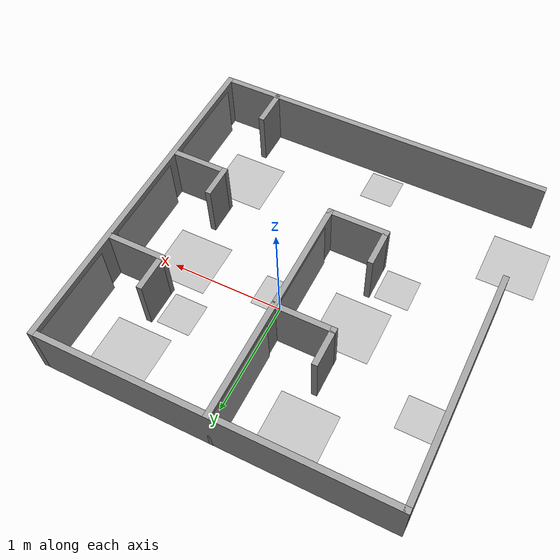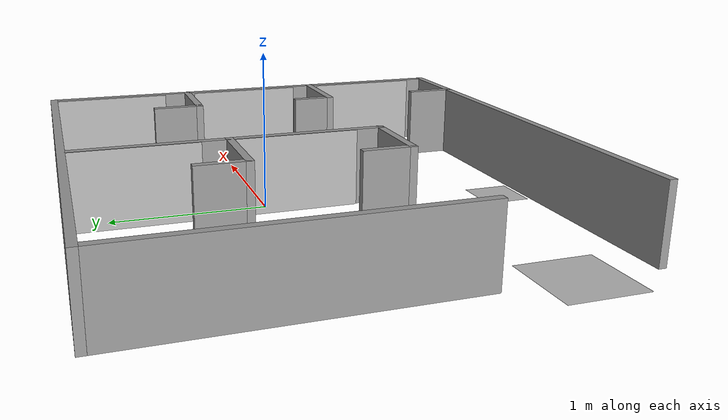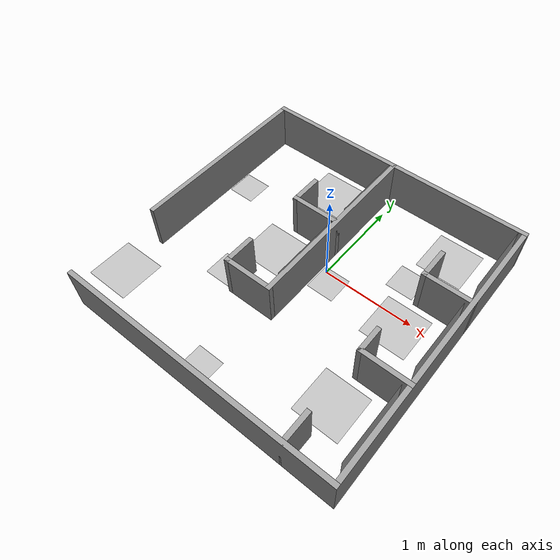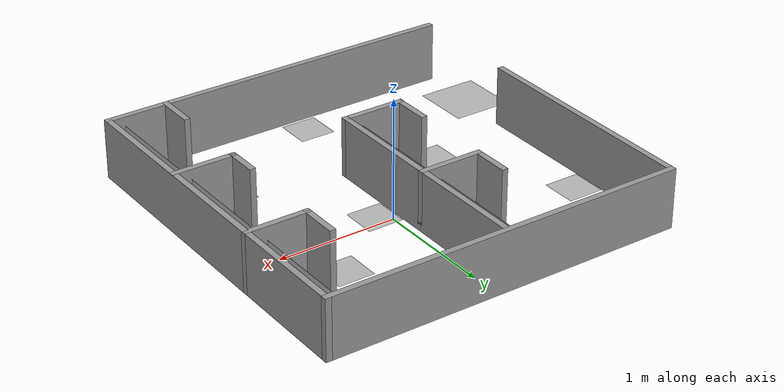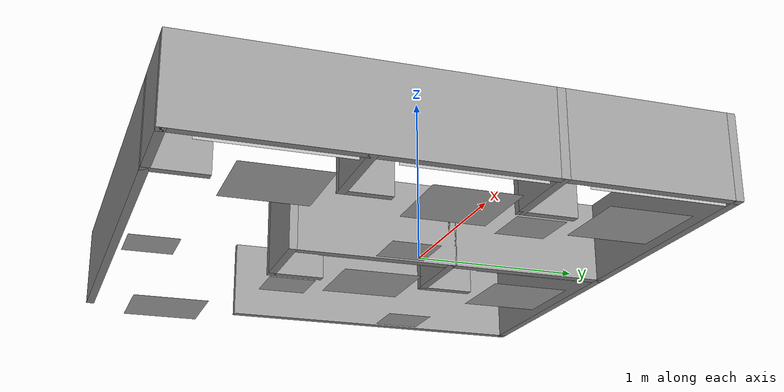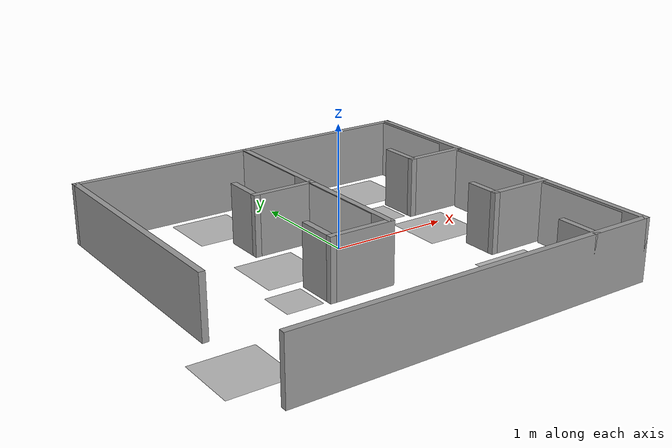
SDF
<?xml version='1.0'?>
<sdf version='1.7'>
  <model name='reinovo_raicom_map'>
    <model name='rei_begin'>
      <link name='link_0'>
        <visual name='visual'>
          <geometry>
            <mesh>
              <uri>model://reinovo_raicom_map/rei_begin/meshes/begin.dae</uri>
            </mesh>
          </geometry>
        </visual>
      </link>
      <pose>-1.6 -1.25 0.01 0 0 0</pose>
    </model>
    <model name='rei_beijing'>
      <link name='link_0'>
        <visual name='visual'>
          <geometry>
            <mesh>
              <uri>model://reinovo_raicom_map/rei_beijing/meshes/beijing.dae</uri>
            </mesh>
          </geometry>
        </visual>
      </link>
      <pose>1.35 -1.2 0.25 1.5707 0.0 -1.5707</pose>
    </model>
    <model name='rei_goal'>
      <link name='link_0'>
        <visual name='visual'>
          <geometry>
            <mesh>
              <uri>model://reinovo_raicom_map/rei_goal/meshes/goal.dae</uri>
            </mesh>
          </geometry>
        </visual>
      </link>
      <pose>-0.6 0.9 0.005 0 -0 0</pose>
    </model>
    <model name='rei_goal_0'>
      <link name='link_0'>
        <visual name='visual'>
          <geometry>
            <mesh>
              <uri>model://reinovo_raicom_map/rei_goal/meshes/goal.dae</uri>
            </mesh>
          </geometry>
        </visual>
      </link>
      <pose>-0.6 -0.1 0.005 0 -0 0</pose>
    </model>
    <model name='rei_goal_1'>
      <link name='link_0'>
        <visual name='visual'>
          <geometry>
            <mesh>
              <uri>model://reinovo_raicom_map/rei_goal/meshes/goal.dae</uri>
            </mesh>
          </geometry>
        </visual>
      </link>
      <pose>0.9 -1.1 0.005 0 -0 0</pose>
    </model>
    <model name='rei_goal_2'>
      <link name='link_0'>
        <visual name='visual'>
          <geometry>
            <mesh>
              <uri>model://reinovo_raicom_map/rei_goal/meshes/goal.dae</uri>
            </mesh>
          </geometry>
        </visual>
      </link>
      <pose>0.9 -0.1 0.005 0 -0 0</pose>
    </model>
    <model name='rei_goal_3'>
      <link name='link_0'>
        <visual name='visual'>
          <geometry>
            <mesh>
              <uri>model://reinovo_raicom_map/rei_goal/meshes/goal.dae</uri>
            </mesh>
          </geometry>
        </visual>
      </link>
      <pose>0.9 0.9 0.005 0 -0 0</pose>
    </model>
    <model name='rei_guangzhou'>
      <link name='link_0'>
        <visual name='visual'>
          <geometry>
            <mesh>
              <uri>model://reinovo_raicom_map/rei_guangzhou/meshes/guangzhou.dae</uri>
            </mesh>
          </geometry>
        </visual>
      </link>
      <pose>1.35 -0.2 0.25 1.5707 0.0 -1.5707</pose>
    </model>
    <model name='rei_jiling'>
      <link name='link_0'>
        <visual name='visual'>
          <geometry>
            <mesh>
              <uri>model://reinovo_raicom_map/rei_jiling/meshes/jiling.dae</uri>
            </mesh>
          </geometry>
        </visual>
      </link>
      <pose>1.35 0.825 0.25 1.5707 0.0 -1.5707</pose>
    </model>
    <model name='rei_obs'>
      <link name='link_0'>
        <visual name='visual'>
          <geometry>
            <mesh>
              <uri>model://reinovo_raicom_map/rei_obs/meshes/obs.dae</uri>
            </mesh>
          </geometry>
        </visual>
      </link>
      <pose>-0.8 -0.6 0.005 0 -0 0</pose>
    </model>
    <model name='rei_obs_0'>
      <link name='link_0'>
        <visual name='visual'>
          <geometry>
            <mesh>
              <uri>model://reinovo_raicom_map/rei_obs/meshes/obs.dae</uri>
            </mesh>
          </geometry>
        </visual>
      </link>
      <pose>-1.4 0.4 0.005 0 -0 0</pose>
    </model>
    <model name='rei_obs_1'>
      <link name='link_0'>
        <visual name='visual'>
          <geometry>
            <mesh>
              <uri>model://reinovo_raicom_map/rei_obs/meshes/obs.dae</uri>
            </mesh>
          </geometry>
        </visual>
      </link>
      <pose>-0.25 -1.55 0.005 0 -0 0</pose>
    </model>
    <model name='rei_obs_2'>
      <link name='link_0'>
        <visual name='visual'>
          <geometry>
            <mesh>
              <uri>model://reinovo_raicom_map/rei_obs/meshes/obs.dae</uri>
            </mesh>
          </geometry>
        </visual>
      </link>
      <pose>0.7 0.4 0.005 0 -0 0</pose>
    </model>
    <model name='rei_obs_3'>
      <link name='link_0'>
        <visual name='visual'>
          <geometry>
            <mesh>
              <uri>model://reinovo_raicom_map/rei_obs/meshes/obs.dae</uri>
            </mesh>
          </geometry>
        </visual>
      </link>
      <pose>0.1 -0.1 0.005 0 -0 0</pose>
    </model>
    <model name='rei_shanghai'>
      <link name='link_0'>
        <visual name='visual'>
          <geometry>
            <mesh>
              <uri>model://reinovo_raicom_map/rei_shanghai/meshes/shanghai.dae</uri>
            </mesh>
          </geometry>
        </visual>
      </link>
      <pose>-0.125 0.825 0.25 1.5707 0.0 -1.5707</pose>
    </model>
    <model name='rei_shenzhen'>
      <link name='link_0'>
        <visual name='visual'>
          <geometry>
            <mesh>
              <uri>model://reinovo_raicom_map/rei_shenzhen/meshes/shenzhen.dae</uri>
            </mesh>
          </geometry>
        </visual>
      </link>
      <pose>-0.125 -0.18 0.25 1.5707 0.0 -1.5707</pose>
    </model>
    <model name='reinovo_match'>
      <pose>-0.088531 -0.254283 0 0 -0 0</pose>
      <link name='Wall_0'>
        <collision name='Wall_0_Collision'>
          <geometry>
            <box>
              <size>3.05 0.05 0.5</size>
            </box>
          </geometry>
          <pose>0 0 0.25 0 -0 0</pose>
        </collision>
        <visual name='Wall_0_Visual'>
          <pose>0 0 0.25 0 -0 0</pose>
          <geometry>
            <box>
              <size>3.05 0.05 0.5</size>
            </box>
          </geometry>
          <material>
            <script>
              <uri>file://media/materials/scripts/gazebo.material</uri>
              <name>Gazebo/Grey</name>
            </script>
            <ambient>1 1 1 1</ambient>
          </material>
          <meta>
            <layer>0</layer>
          </meta>
        </visual>
        <pose>0 -1.5 0 0 -0 0</pose>
      </link>
      <link name='Wall_11'>
        <collision name='Wall_11_Collision'>
          <geometry>
            <box>
              <size>0.3 0.05 0.5</size>
            </box>
          </geometry>
          <pose>0 0 0.25 0 -0 0</pose>
        </collision>
        <visual name='Wall_11_Visual'>
          <pose>0 0 0.25 0 -0 0</pose>
          <geometry>
            <box>
              <size>0.3 0.05 0.5</size>
            </box>
          </geometry>
          <material>
            <script>
              <uri>file://media/materials/scripts/gazebo.material</uri>
              <name>Gazebo/Grey</name>
            </script>
            <ambient>1 1 1 1</ambient>
          </material>
          <meta>
            <layer>0</layer>
          </meta>
        </visual>
        <pose>1 -0.375 0 0 -0 1.5708</pose>
      </link>
      <link name='Wall_13'>
        <collision name='Wall_13_Collision'>
          <geometry>
            <box>
              <size>0.35 0.05 0.5</size>
            </box>
          </geometry>
          <pose>0 0 0.25 0 -0 0</pose>
        </collision>
        <visual name='Wall_13_Visual'>
          <pose>0 0 0.25 0 -0 0</pose>
          <geometry>
            <box>
              <size>0.35 0.05 0.5</size>
            </box>
          </geometry>
          <material>
            <script>
              <uri>file://media/materials/scripts/gazebo.material</uri>
              <name>Gazebo/Grey</name>
            </script>
            <ambient>1 1 1 1</ambient>
          </material>
          <meta>
            <layer>0</layer>
          </meta>
        </visual>
        <pose>1 0.65 0 0 -0 1.5708</pose>
      </link>
      <link name='Wall_16'>
        <collision name='Wall_16_Collision'>
          <geometry>
            <box>
              <size>0.55 0.05 0.5</size>
            </box>
          </geometry>
          <pose>0 0 0.25 0 -0 0</pose>
        </collision>
        <visual name='Wall_16_Visual'>
          <pose>0 0 0.25 0 -0 0</pose>
          <geometry>
            <box>
              <size>0.55 0.05 0.5</size>
            </box>
          </geometry>
          <material>
            <script>
              <uri>file://media/materials/scripts/gazebo.material</uri>
              <name>Gazebo/Grey</name>
            </script>
            <ambient>1 1 1 1</ambient>
          </material>
          <meta>
            <layer>0</layer>
          </meta>
        </visual>
        <pose>1.25 0.5 0 0 -0 3.14159</pose>
      </link>
      <link name='Wall_18'>
        <collision name='Wall_18_Collision'>
          <geometry>
            <box>
              <size>0.55 0.05 0.5</size>
            </box>
          </geometry>
          <pose>0 0 0.25 0 -0 0</pose>
        </collision>
        <visual name='Wall_18_Visual'>
          <pose>0 0 0.25 0 -0 0</pose>
          <geometry>
            <box>
              <size>0.55 0.05 0.5</size>
            </box>
          </geometry>
          <material>
            <script>
              <uri>file://media/materials/scripts/gazebo.material</uri>
              <name>Gazebo/Grey</name>
            </script>
            <ambient>1 1 1 1</ambient>
          </material>
          <meta>
            <layer>0</layer>
          </meta>
        </visual>
        <pose>1.25 -0.5 0 0 -0 3.14159</pose>
      </link>
      <link name='Wall_2'>
        <collision name='Wall_2_Collision'>
          <geometry>
            <box>
              <size>3.05 0.05 0.5</size>
            </box>
          </geometry>
          <pose>0 0 0.25 0 -0 0</pose>
        </collision>
        <visual name='Wall_2_Visual'>
          <pose>0 0 0.25 0 -0 0</pose>
          <geometry>
            <box>
              <size>3.05 0.05 0.5</size>
            </box>
          </geometry>
          <material>
            <script>
              <uri>file://media/materials/scripts/gazebo.material</uri>
              <name>Gazebo/Grey</name>
            </script>
            <ambient>1 1 1 1</ambient>
          </material>
          <meta>
            <layer>0</layer>
          </meta>
        </visual>
        <pose>1.5 0 0 0 -0 1.5708</pose>
      </link>
      <link name='Wall_20'>
        <collision name='Wall_20_Collision'>
          <geometry>
            <box>
              <size>0.55 0.05 0.5</size>
            </box>
          </geometry>
          <pose>0 0 0.25 0 -0 0</pose>
        </collision>
        <visual name='Wall_20_Visual'>
          <pose>0 0 0.25 0 -0 0</pose>
          <geometry>
            <box>
              <size>0.55 0.05 0.5</size>
            </box>
          </geometry>
          <material>
            <script>
              <uri>file://media/materials/scripts/gazebo.material</uri>
              <name>Gazebo/Grey</name>
            </script>
            <ambient>1 1 1 1</ambient>
          </material>
          <meta>
            <layer>0</layer>
          </meta>
        </visual>
        <pose>-0.25 0.5 0 0 -0 3.14159</pose>
      </link>
      <link name='Wall_22'>
        <collision name='Wall_22_Collision'>
          <geometry>
            <box>
              <size>0.55 0.05 0.5</size>
            </box>
          </geometry>
          <pose>0 0 0.25 0 -0 0</pose>
        </collision>
        <visual name='Wall_22_Visual'>
          <pose>0 0 0.25 0 -0 0</pose>
          <geometry>
            <box>
              <size>0.55 0.05 0.5</size>
            </box>
          </geometry>
          <material>
            <script>
              <uri>file://media/materials/scripts/gazebo.material</uri>
              <name>Gazebo/Grey</name>
            </script>
            <ambient>1 1 1 1</ambient>
          </material>
          <meta>
            <layer>0</layer>
          </meta>
        </visual>
        <pose>-0.25 -0.5 0 0 -0 3.14159</pose>
      </link>
      <link name='Wall_24'>
        <collision name='Wall_24_Collision'>
          <geometry>
            <box>
              <size>2.05 0.05 0.5</size>
            </box>
          </geometry>
          <pose>0 0 0.25 0 -0 0</pose>
        </collision>
        <visual name='Wall_24_Visual'>
          <pose>0 0 0.25 0 -0 0</pose>
          <geometry>
            <box>
              <size>2.05 0.05 0.5</size>
            </box>
          </geometry>
          <material>
            <script>
              <uri>file://media/materials/scripts/gazebo.material</uri>
              <name>Gazebo/Grey</name>
            </script>
            <ambient>1 1 1 1</ambient>
          </material>
          <meta>
            <layer>0</layer>
          </meta>
        </visual>
        <pose>0 0.5 0 0 -0 -1.5708</pose>
      </link>
      <link name='Wall_26'>
        <collision name='Wall_26_Collision'>
          <geometry>
            <box>
              <size>0.35 0.05 0.5</size>
            </box>
          </geometry>
          <pose>0 0 0.25 0 -0 0</pose>
        </collision>
        <visual name='Wall_26_Visual'>
          <pose>0 0 0.25 0 -0 0</pose>
          <geometry>
            <box>
              <size>0.35 0.05 0.5</size>
            </box>
          </geometry>
          <material>
            <script>
              <uri>file://media/materials/scripts/gazebo.material</uri>
              <name>Gazebo/Grey</name>
            </script>
            <ambient>1 1 1 1</ambient>
          </material>
          <meta>
            <layer>0</layer>
          </meta>
        </visual>
        <pose>-0.5 0.65 0 0 -0 1.5708</pose>
      </link>
      <link name='Wall_28'>
        <collision name='Wall_28_Collision'>
          <geometry>
            <box>
              <size>0.35 0.05 0.5</size>
            </box>
          </geometry>
          <pose>0 0 0.25 0 -0 0</pose>
        </collision>
        <visual name='Wall_28_Visual'>
          <pose>0 0 0.25 0 -0 0</pose>
          <geometry>
            <box>
              <size>0.35 0.05 0.5</size>
            </box>
          </geometry>
          <material>
            <script>
              <uri>file://media/materials/scripts/gazebo.material</uri>
              <name>Gazebo/Grey</name>
            </script>
            <ambient>1 1 1 1</ambient>
          </material>
          <meta>
            <layer>0</layer>
          </meta>
        </visual>
        <pose>-0.5 -0.35 0 0 -0 1.5708</pose>
      </link>
      <link name='Wall_4'>
        <collision name='Wall_4_Collision'>
          <geometry>
            <box>
              <size>3.05 0.05 0.5</size>
            </box>
          </geometry>
          <pose>0 0 0.25 0 -0 0</pose>
        </collision>
        <visual name='Wall_4_Visual'>
          <pose>0 0 0.25 0 -0 0</pose>
          <geometry>
            <box>
              <size>3.05 0.05 0.5</size>
            </box>
          </geometry>
          <material>
            <script>
              <uri>file://media/materials/scripts/gazebo.material</uri>
              <name>Gazebo/Grey</name>
            </script>
            <ambient>1 1 1 1</ambient>
          </material>
          <meta>
            <layer>0</layer>
          </meta>
        </visual>
        <pose>0 1.5 0 0 -0 3.14159</pose>
      </link>
      <link name='Wall_6'>
        <collision name='Wall_6_Collision'>
          <geometry>
            <box>
              <size>2.05 0.05 0.5</size>
            </box>
          </geometry>
          <pose>0 0 0.25 0 -0 0</pose>
        </collision>
        <visual name='Wall_6_Visual'>
          <pose>0 0 0.25 0 -0 0</pose>
          <geometry>
            <box>
              <size>2.05 0.05 0.5</size>
            </box>
          </geometry>
          <material>
            <script>
              <uri>file://media/materials/scripts/gazebo.material</uri>
              <name>Gazebo/Grey</name>
            </script>
            <ambient>1 1 1 1</ambient>
          </material>
          <meta>
            <layer>0</layer>
          </meta>
        </visual>
        <pose>-1.5 0.5 0 0 -0 -1.5708</pose>
      </link>
      <link name='Wall_8'>
        <collision name='Wall_8_Collision'>
          <geometry>
            <box>
              <size>0.35 0.05 0.5</size>
            </box>
          </geometry>
          <pose>0 0 0.25 0 -0 0</pose>
        </collision>
        <visual name='Wall_8_Visual'>
          <pose>0 0 0.25 0 -0 0</pose>
          <geometry>
            <box>
              <size>0.35 0.05 0.5</size>
            </box>
          </geometry>
          <material>
            <script>
              <uri>file://media/materials/scripts/gazebo.material</uri>
              <name>Gazebo/Grey</name>
            </script>
            <ambient>1 1 1 1</ambient>
          </material>
          <meta>
            <layer>0</layer>
          </meta>
        </visual>
        <pose>1 -1.35 0 0 -0 1.5708</pose>
      </link>
      <static>1</static>
    </model>
    <joint name='Wall_0_JOINT_9' type='fixed'>
      <parent>reinovo_match::Wall_0</parent>
      <child>rei_obs_1::link_0</child>
      <pose>0 0 0 0 -0 0</pose>
      <physics>
        <ode>
          <limit>
            <cfm>0</cfm>
            <erp>0.2</erp>
          </limit>
          <suspension>
            <cfm>0</cfm>
            <erp>0.2</erp>
          </suspension>
        </ode>
      </physics>
    </joint>
    <joint name='Wall_11_JOINT_14' type='fixed'>
      <parent>reinovo_match::Wall_11</parent>
      <child>rei_goal_2::link_0</child>
      <pose>0 0 0 0 -0 0</pose>
      <physics>
        <ode>
          <limit>
            <cfm>0</cfm>
            <erp>0.2</erp>
          </limit>
          <suspension>
            <cfm>0</cfm>
            <erp>0.2</erp>
          </suspension>
        </ode>
      </physics>
    </joint>
    <joint name='Wall_13_JOINT_15' type='fixed'>
      <parent>reinovo_match::Wall_13</parent>
      <child>rei_goal_3::link_0</child>
      <pose>0 0 0 0 -0 0</pose>
      <physics>
        <ode>
          <limit>
            <cfm>0</cfm>
            <erp>0.2</erp>
          </limit>
          <suspension>
            <cfm>0</cfm>
            <erp>0.2</erp>
          </suspension>
        </ode>
      </physics>
    </joint>
    <joint name='Wall_13_JOINT_16' type='fixed'>
      <parent>reinovo_match::Wall_13</parent>
      <child>rei_obs_2::link_0</child>
      <pose>0 0 0 0 -0 0</pose>
      <physics>
        <ode>
          <limit>
            <cfm>0</cfm>
            <erp>0.2</erp>
          </limit>
          <suspension>
            <cfm>0</cfm>
            <erp>0.2</erp>
          </suspension>
        </ode>
      </physics>
    </joint>
    <joint name='Wall_24_JOINT_17' type='fixed'>
      <parent>reinovo_match::Wall_24</parent>
      <child>rei_obs_3::link_0</child>
      <pose>0 0 0 0 -0 0</pose>
      <physics>
        <ode>
          <limit>
            <cfm>0</cfm>
            <erp>0.2</erp>
          </limit>
          <suspension>
            <cfm>0</cfm>
            <erp>0.2</erp>
          </suspension>
        </ode>
      </physics>
    </joint>
    <joint name='Wall_24_JOINT_2' type='fixed'>
      <parent>reinovo_match::Wall_24</parent>
      <child>rei_shanghai::link_0</child>
      <pose>0 0 0 0 -0 0</pose>
      <physics>
        <ode>
          <limit>
            <cfm>0</cfm>
            <erp>0.2</erp>
          </limit>
          <suspension>
            <cfm>0</cfm>
            <erp>0.2</erp>
          </suspension>
        </ode>
      </physics>
    </joint>
    <joint name='Wall_24_JOINT_5' type='fixed'>
      <parent>reinovo_match::Wall_24</parent>
      <child>rei_shenzhen::link_0</child>
      <pose>0 0 0 0 -0 0</pose>
      <physics>
        <ode>
          <limit>
            <cfm>0</cfm>
            <erp>0.2</erp>
          </limit>
          <suspension>
            <cfm>0</cfm>
            <erp>0.2</erp>
          </suspension>
        </ode>
      </physics>
    </joint>
    <joint name='Wall_26_JOINT_4' type='fixed'>
      <parent>reinovo_match::Wall_26</parent>
      <child>rei_goal::link_0</child>
      <pose>0 0 0 0 -0 0</pose>
      <physics>
        <ode>
          <limit>
            <cfm>0</cfm>
            <erp>0.2</erp>
          </limit>
          <suspension>
            <cfm>0</cfm>
            <erp>0.2</erp>
          </suspension>
        </ode>
      </physics>
    </joint>
    <joint name='Wall_28_JOINT_6' type='fixed'>
      <parent>reinovo_match::Wall_28</parent>
      <child>rei_goal_0::link_0</child>
      <pose>0 0 0 0 -0 0</pose>
      <physics>
        <ode>
          <limit>
            <cfm>0</cfm>
            <erp>0.2</erp>
          </limit>
          <suspension>
            <cfm>0</cfm>
            <erp>0.2</erp>
          </suspension>
        </ode>
      </physics>
    </joint>
    <joint name='Wall_28_JOINT_7' type='fixed'>
      <parent>reinovo_match::Wall_28</parent>
      <child>rei_obs::link_0</child>
      <pose>0 0 0 0 -0 0</pose>
      <physics>
        <ode>
          <limit>
            <cfm>0</cfm>
            <erp>0.2</erp>
          </limit>
          <suspension>
            <cfm>0</cfm>
            <erp>0.2</erp>
          </suspension>
        </ode>
      </physics>
    </joint>
    <joint name='Wall_2_JOINT_10' type='fixed'>
      <parent>reinovo_match::Wall_2</parent>
      <child>rei_beijing::link_0</child>
      <pose>0 0 0 0 -0 0</pose>
      <physics>
        <ode>
          <limit>
            <cfm>0</cfm>
            <erp>0.2</erp>
          </limit>
          <suspension>
            <cfm>0</cfm>
            <erp>0.2</erp>
          </suspension>
        </ode>
      </physics>
    </joint>
    <joint name='Wall_2_JOINT_11' type='fixed'>
      <parent>reinovo_match::Wall_2</parent>
      <child>rei_guangzhou::link_0</child>
      <pose>0 0 0 0 -0 0</pose>
      <physics>
        <ode>
          <limit>
            <cfm>0</cfm>
            <erp>0.2</erp>
          </limit>
          <suspension>
            <cfm>0</cfm>
            <erp>0.2</erp>
          </suspension>
        </ode>
      </physics>
    </joint>
    <joint name='Wall_2_JOINT_12' type='fixed'>
      <parent>reinovo_match::Wall_2</parent>
      <child>rei_jiling::link_0</child>
      <pose>0 0 0 0 -0 0</pose>
      <physics>
        <ode>
          <limit>
            <cfm>0</cfm>
            <erp>0.2</erp>
          </limit>
          <suspension>
            <cfm>0</cfm>
            <erp>0.2</erp>
          </suspension>
        </ode>
      </physics>
    </joint>
    <joint name='Wall_6_JOINT_0' type='fixed'>
      <parent>reinovo_match::Wall_6</parent>
      <child>rei_begin::link_0</child>
      <pose>0 0 0.0 0 -0 0</pose>
      <physics>
        <ode>
          <limit>
            <cfm>0</cfm>
            <erp>0.2</erp>
          </limit>
          <suspension>
            <cfm>0</cfm>
            <erp>0.2</erp>
          </suspension>
        </ode>
      </physics>
    </joint>
    <joint name='Wall_6_JOINT_8' type='fixed'>
      <parent>reinovo_match::Wall_6</parent>
      <child>rei_obs_0::link_0</child>
      <pose>0 0 0 0 -0 0</pose>
      <physics>
        <ode>
          <limit>
            <cfm>0</cfm>
            <erp>0.2</erp>
          </limit>
          <suspension>
            <cfm>0</cfm>
            <erp>0.2</erp>
          </suspension>
        </ode>
      </physics>
    </joint>
    <joint name='Wall_8_JOINT_13' type='fixed'>
      <parent>reinovo_match::Wall_8</parent>
      <child>rei_goal_1::link_0</child>
      <pose>0 0 0 0 -0 0</pose>
      <physics>
        <ode>
          <limit>
            <cfm>0</cfm>
            <erp>0.2</erp>
          </limit>
          <suspension>
            <cfm>0</cfm>
            <erp>0.2</erp>
          </suspension>
        </ode>
      </physics>
    </joint>
    <static>0</static>
    <allow_auto_disable>1</allow_auto_disable>
  </model>
</sdf>
